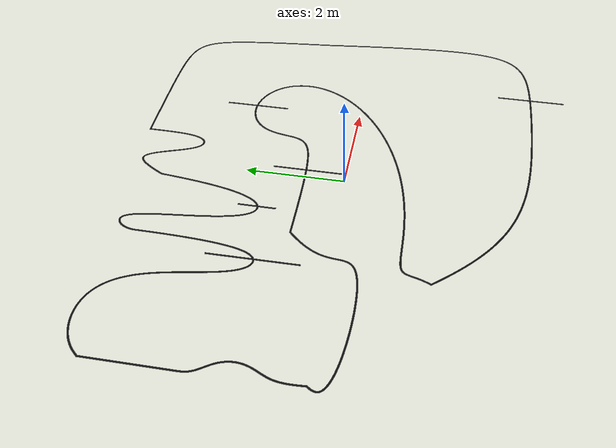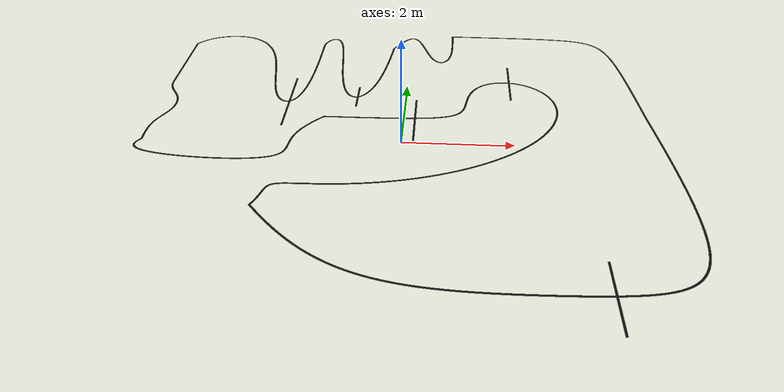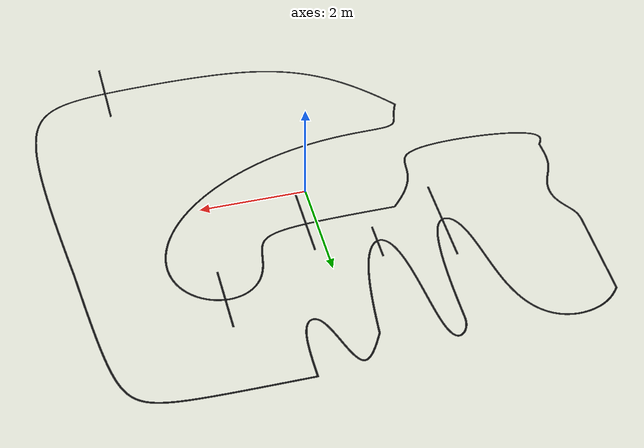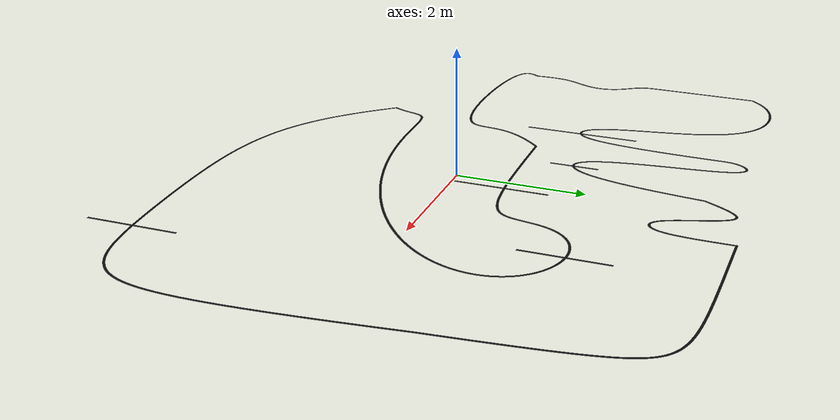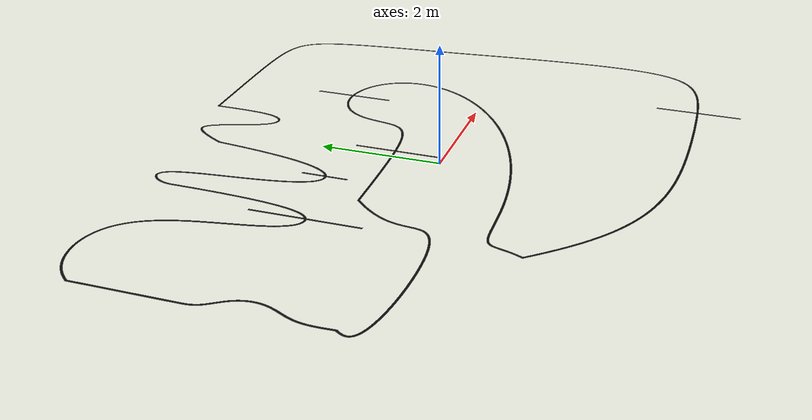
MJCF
<mujoco model="HardTrack">
  <asset>
    <mesh name="HardTrack" file="../../objects/tracks/HardTrack.obj" inertia="shell"
          scale="7.5 7.5 7.5"/>
  </asset>
  <worldbody>
    <geom name="line_HardTrack" type="mesh" mesh="HardTrack" quat="1 0 0 0"
          pos="-2.9275 1.0839 0.002"
          contype="0" conaffinity="0" group="2" rgba="0.05 0.05 0.05 1"/>
  </worldbody>
</mujoco>
